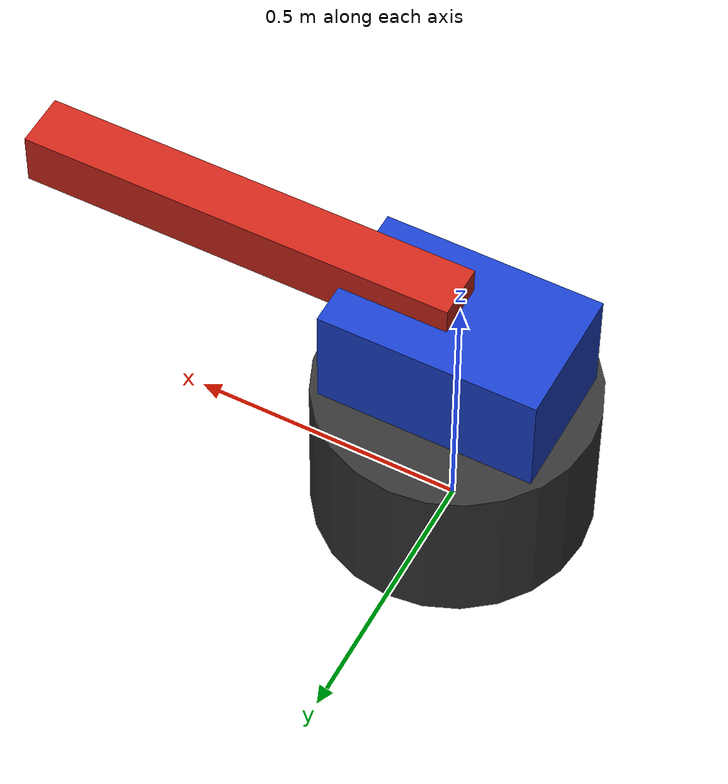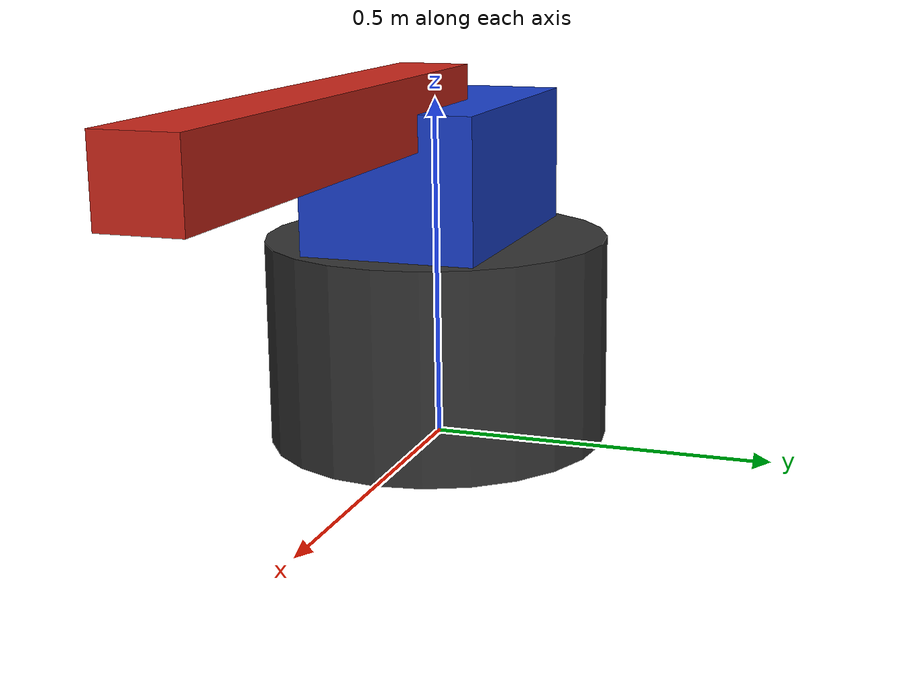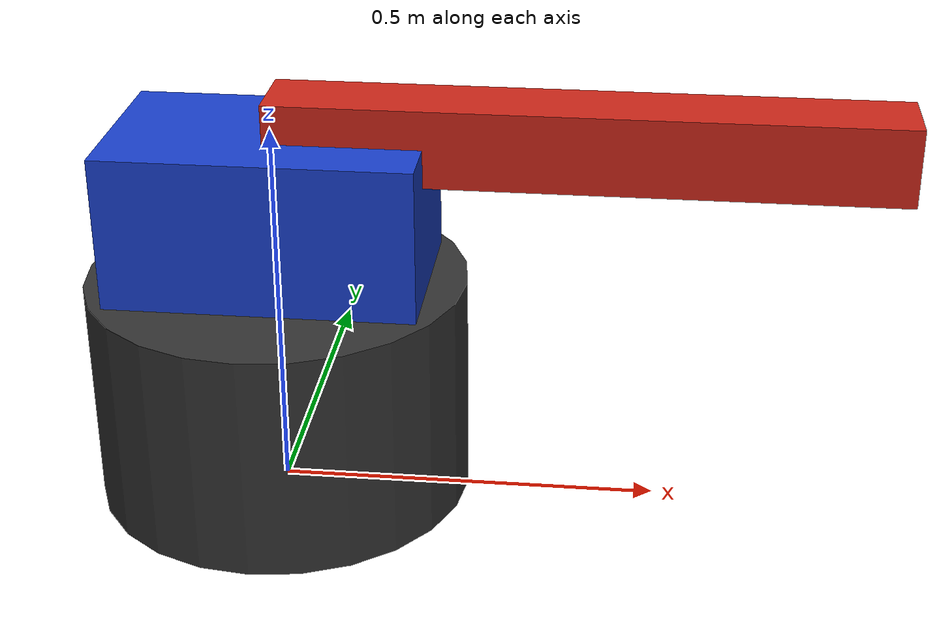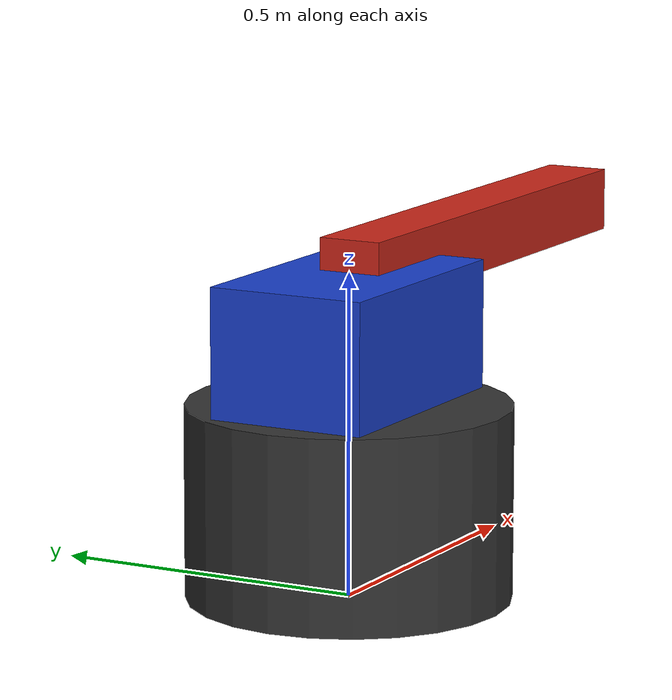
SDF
<?xml version="1.0" ?>

<sdf version="1.9">
  <model name="pan_tilt">

    <!-- Model zeminde sabit dursun. -->
    <static>false</static>

    <!-- Alt sabit gövde -->
    <link name="base_link">
      <pose>0 0 0.15 0 0 0</pose>

      <inertial>
        <mass>5.0</mass>
        <inertia>
          <ixx>0.10</ixx>
          <iyy>0.10</iyy>
          <izz>0.10</izz>
          <ixy>0.0</ixy>
          <ixz>0.0</ixz>
          <iyz>0.0</iyz>
        </inertia>
      </inertial>

      <visual name="base_visual">
        <geometry>
          <cylinder>
            <radius>0.25</radius>
            <length>0.30</length>
          </cylinder>
        </geometry>

        <material>
          <ambient>0.15 0.15 0.15 1</ambient>
          <diffuse>0.20 0.20 0.20 1</diffuse>
        </material>
      </visual>

      <collision name="base_collision">
        <geometry>
          <cylinder>
            <radius>0.25</radius>
            <length>0.30</length>
          </cylinder>
        </geometry>
      </collision>
    </link>

    <!-- Yatay dönen bölüm -->
    <link name="pan_link">
      <pose>0 0 0.40 0 0 0</pose>

      <inertial>
        <mass>1.0</mass>
        <inertia>
          <ixx>0.02</ixx>
          <iyy>0.02</iyy>
          <izz>0.02</izz>
          <ixy>0.0</ixy>
          <ixz>0.0</ixz>
          <iyz>0.0</iyz>
        </inertia>
      </inertial>

      <visual name="pan_visual">
        <geometry>
          <box>
            <size>0.40 0.25 0.20</size>
          </box>
        </geometry>

        <material>
          <ambient>0.10 0.25 0.80 1</ambient>
          <diffuse>0.10 0.25 0.80 1</diffuse>
        </material>
      </visual>

      <collision name="pan_collision">
        <geometry>
          <box>
            <size>0.40 0.25 0.20</size>
          </box>
        </geometry>
      </collision>
    </link>

    <!-- Dikey hareket eden namlu / lazer gövdesi -->
    <link name="tilt_link">
      <pose>0.40 0 0.50 0 0 0</pose>

      <inertial>
        <mass>0.5</mass>
        <inertia>
          <ixx>0.01</ixx>
          <iyy>0.01</iyy>
          <izz>0.01</izz>
          <ixy>0.0</ixy>
          <ixz>0.0</ixz>
          <iyz>0.0</iyz>
        </inertia>
      </inertial>

      <visual name="tilt_visual">
        <geometry>
          <box>
            <size>0.80 0.10 0.10</size>
          </box>
        </geometry>

        <material>
          <ambient>0.80 0.15 0.10 1</ambient>
          <diffuse>0.80 0.15 0.10 1</diffuse>
        </material>
      </visual>

      <collision name="tilt_collision">
        <geometry>
          <box>
            <size>0.80 0.10 0.10</size>
          </box>
        </geometry>
      </collision>
    </link>

    <!-- Base'i dünyaya sabitle -->
    <joint name="base_fixed_joint" type="fixed">
      <parent>world</parent>
      <child>base_link</child>
    </joint>

    <!-- Yatay eksen: Z ekseni etrafında dönme -->
    <joint name="pan_joint" type="revolute">
      <pose relative_to="base_link">0 0 0.25 0 0 0</pose>

      <parent>base_link</parent>
      <child>pan_link</child>

      <axis>
        <xyz>0 0 1</xyz>

        <limit>
          <lower>-1.5708</lower>
          <upper>1.5708</upper>
          <effort>50</effort>
          <velocity>2</velocity>
        </limit>

        <dynamics>
          <damping>0.5</damping>
          <friction>0.1</friction>
        </dynamics>
      </axis>
    </joint>

    <!-- Dikey eksen: Y ekseni etrafında dönme -->
    <joint name="tilt_joint" type="revolute">
      <pose relative_to="pan_link">0.20 0 0.10 0 0 0</pose>

      <parent>pan_link</parent>
      <child>tilt_link</child>

      <axis>
        <xyz>0 1 0</xyz>

        <limit>
          <lower>-0.7854</lower>
          <upper>0.7854</upper>
          <effort>30</effort>
          <velocity>2</velocity>
        </limit>

        <dynamics>
          <damping>0.5</damping>
          <friction>0.1</friction>
        </dynamics>
      </axis>
    </joint>

    <!-- Pan eklemi konum kontrolcüsü -->
    <plugin
      filename="gz-sim-joint-position-controller-system"
      name="gz::sim::systems::JointPositionController">

      <joint_name>pan_joint</joint_name>
      <topic>/pan_cmd</topic>

      <p_gain>10.0</p_gain>
      <i_gain>0.1</i_gain>
      <d_gain>1.0</d_gain>

      <i_max>1.0</i_max>
      <i_min>-1.0</i_min>

      <cmd_max>50.0</cmd_max>
      <cmd_min>-50.0</cmd_min>
    </plugin>

    <!-- Tilt eklemi konum kontrolcüsü -->
    <plugin
      filename="gz-sim-joint-position-controller-system"
      name="gz::sim::systems::JointPositionController">

      <joint_name>tilt_joint</joint_name>
      <topic>/tilt_cmd</topic>

      <p_gain>10.0</p_gain>
      <i_gain>0.1</i_gain>
      <d_gain>1.0</d_gain>

      <i_max>1.0</i_max>
      <i_min>-1.0</i_min>

      <cmd_max>30.0</cmd_max>
      <cmd_min>-30.0</cmd_min>
    </plugin>

  </model>
</sdf>
